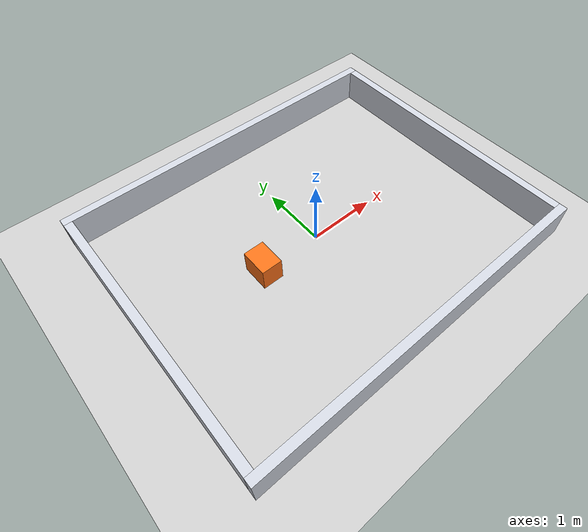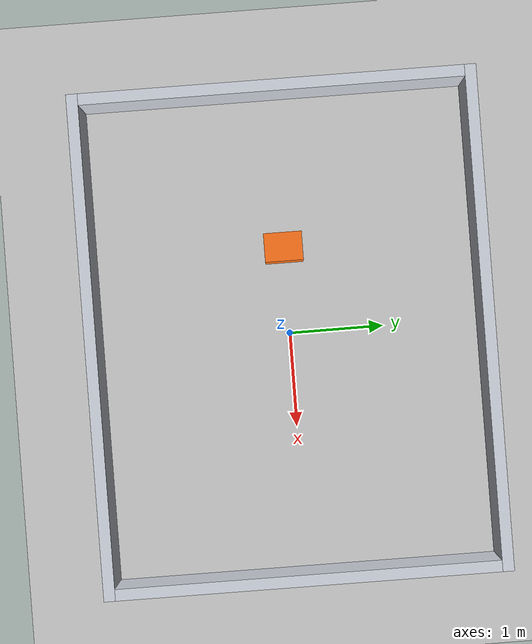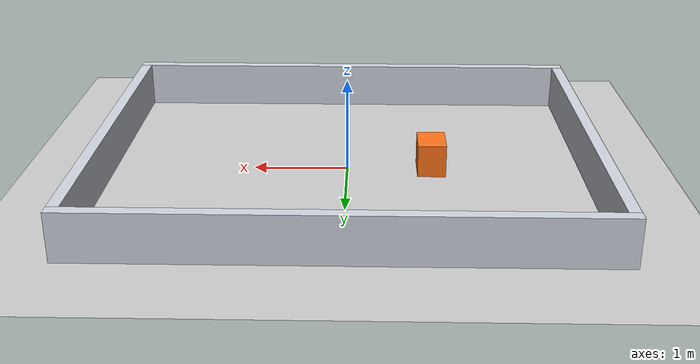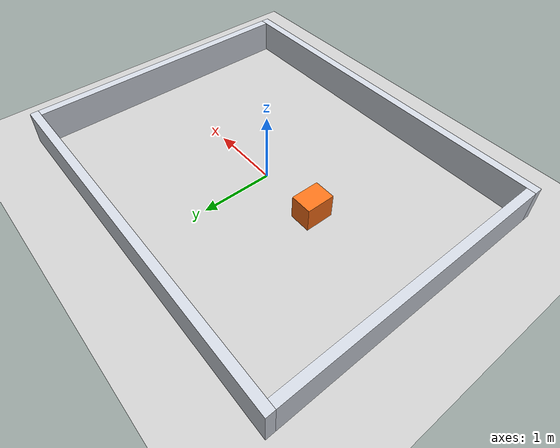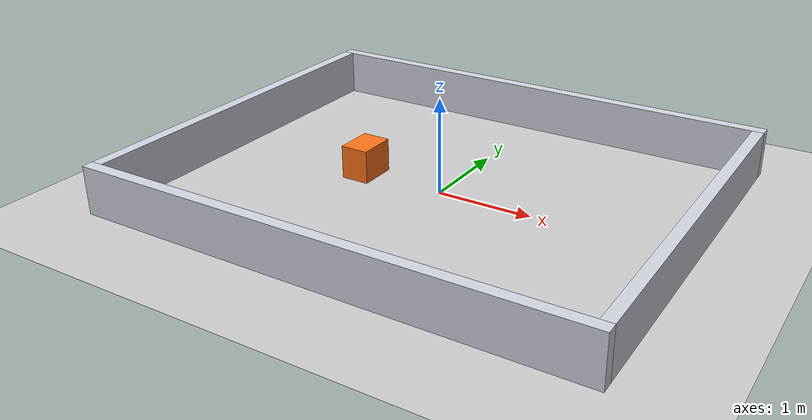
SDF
<?xml version="1.0"?>
<sdf version="1.8">
  <world name="default">
    <physics type="ode">
      <real_time_update_rate>1000.0</real_time_update_rate>
      <max_step_size>0.001</max_step_size>
      <real_time_factor>1</real_time_factor>
    </physics>
    <plugin filename="gz-sim-physics-system" name="gz::sim::systems::Physics"/>
    <plugin filename="gz-sim-user-commands-system" name="gz::sim::systems::UserCommands"/>
    <plugin filename="gz-sim-scene-broadcaster-system" name="gz::sim::systems::SceneBroadcaster"/>
    <plugin filename="gz-sim-sensors-system" name="gz::sim::systems::Sensors">
      <render_engine>ogre2</render_engine>
    </plugin>
    <plugin filename="gz-sim-imu-system" name="gz::sim::systems::Imu"/>

    <light type="directional" name="sun">
      <cast_shadows>true</cast_shadows>
      <pose>0 0 10 0 0 0</pose>
      <diffuse>0.8 0.8 0.8 1</diffuse>
      <specular>0.2 0.2 0.2 1</specular>
      <attenuation>
        <range>1000</range>
        <constant>0.9</constant>
        <linear>0.01</linear>
        <quadratic>0.001</quadratic>
      </attenuation>
      <direction>-0.5 0.1 -0.9</direction>
    </light>
    <model name="ground_plane">
      <static>true</static>
      <link name="link">
        <collision name="collision">
          <geometry>
            <plane>
              <normal>0 0 1</normal>
              <size>100 100</size>
            </plane>
          </geometry>
        </collision>
        <visual name="visual">
          <geometry>
            <plane>
              <normal>0 0 1</normal>
              <size>100 100</size>
            </plane>
          </geometry>
          <material>
            <ambient>0.8 0.8 0.8 1</ambient>
            <diffuse>0.8 0.8 0.8 1</diffuse>
            <specular>0.8 0.8 0.8 1</specular>
          </material>
        </visual>
      </link>
    </model>

    <model name="room">
      <static>true</static>
      <link name="north">
        <pose>0 2.06 0.25 0 0 0</pose>
        <collision name="c"><geometry><box><size>5.24 0.12 0.5</size></box></geometry></collision>
        <visual name="v"><geometry><box><size>5.24 0.12 0.5</size></box></geometry>
          <material><ambient>0.82 0.84 0.88 1</ambient><diffuse>0.82 0.84 0.88 1</diffuse></material></visual>
      </link>
      <link name="south">
        <pose>0 -2.06 0.25 0 0 0</pose>
        <collision name="c"><geometry><box><size>5.24 0.12 0.5</size></box></geometry></collision>
        <visual name="v"><geometry><box><size>5.24 0.12 0.5</size></box></geometry>
          <material><ambient>0.82 0.84 0.88 1</ambient><diffuse>0.82 0.84 0.88 1</diffuse></material></visual>
      </link>
      <link name="east">
        <pose>2.56 0 0.25 0 0 0</pose>
        <collision name="c"><geometry><box><size>0.12 4.0 0.5</size></box></geometry></collision>
        <visual name="v"><geometry><box><size>0.12 4.0 0.5</size></box></geometry>
          <material><ambient>0.82 0.84 0.88 1</ambient><diffuse>0.82 0.84 0.88 1</diffuse></material></visual>
      </link>
      <link name="west">
        <pose>-2.56 0 0.25 0 0 0</pose>
        <collision name="c"><geometry><box><size>0.12 4.0 0.5</size></box></geometry></collision>
        <visual name="v"><geometry><box><size>0.12 4.0 0.5</size></box></geometry>
          <material><ambient>0.82 0.84 0.88 1</ambient><diffuse>0.82 0.84 0.88 1</diffuse></material></visual>
      </link>
    </model>

    <model name="obstacle">
      <static>true</static>
      <link name="box">
        <pose>-0.9 0 0.175 0 0 0</pose>
        <collision name="c"><geometry><box><size>0.3 0.4 0.35</size></box></geometry></collision>
        <visual name="v"><geometry><box><size>0.3 0.4 0.35</size></box></geometry>
          <material><ambient>1.0 0.45 0.1 1</ambient><diffuse>1.0 0.45 0.1 1</diffuse></material></visual>
      </link>
    </model>
  </world>
</sdf>
